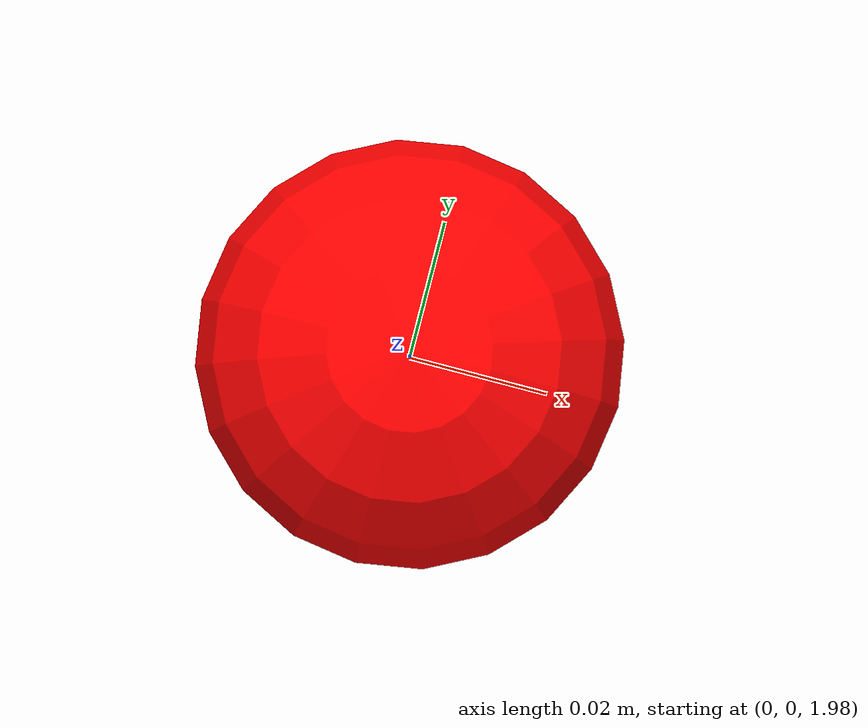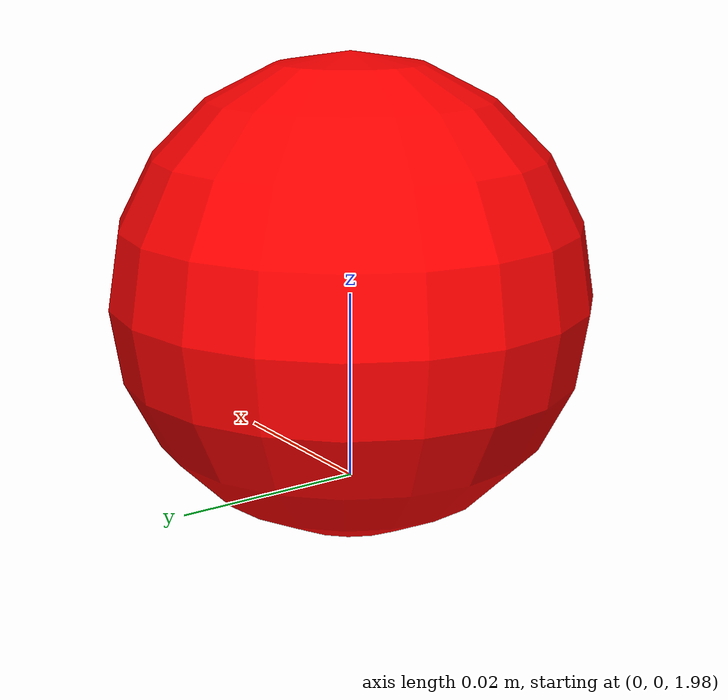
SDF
<?xml version="1.0" ?>
<sdf version="1.8">
  <world name="isaactabletop_sphere50_no_collision_no_gravity">

    <physics name="1ms" type="ignored">
      <max_step_size>0.001</max_step_size>
      <real_time_factor>1.0</real_time_factor>
      <real_time_update_rate>1000</real_time_update_rate>
    </physics>

    <gravity>0.0 0.0 0.0</gravity>

    <plugin
      filename="ignition-gazebo-physics-system"
      name="ignition::gazebo::systems::Physics">
    </plugin>

    <plugin
      filename="ignition-gazebo-user-commands-system"
      name="ignition::gazebo::systems::UserCommands">
    </plugin>

    <plugin
      filename="ignition-gazebo-scene-broadcaster-system"
      name="ignition::gazebo::systems::SceneBroadcaster">
    </plugin>

    <!-- A global light source -->
    <light type="directional" name="sun">
      <cast_shadows>true</cast_shadows>
      <pose>0 0 10 0 0 0</pose>
      <diffuse>0.8 0.8 0.8 1</diffuse>
      <specular>0.2 0.2 0.2 1</specular>
      <attenuation>
        <range>1000</range>
        <constant>0.9</constant>
        <linear>0.01</linear>
        <quadratic>0.001</quadratic>
      </attenuation>
      <direction>-0.5 0.1 -0.9</direction>
    </light>

    <!-- A ground plane -->
    <model name="ground_plane">
      <static>true</static>
      <link name="link">
        <collision name="collision">
          <geometry>
            <plane>
              <normal>0 0 1</normal>
              <size>100 100</size>
            </plane>
          </geometry>
        </collision>
        <visual name="visual">
          <geometry>
            <plane>
              <normal>0 0 1</normal>
              <size>100 100</size>
            </plane>
          </geometry>
          <material>
            <ambient>0.2 0.8 0.2 1</ambient>
            <diffuse>0.2 0.8 0.2 1</diffuse>
            <specular>0.1 0.1 0.1 1</specular>
          </material>
        </visual>
      </link>
    </model>

    <include>
      <uri>model://sphere50_no_collision</uri>
      <pose>0 0.0 2.0 0 0 0</pose>
    </include>

    <include>
      <uri>model://tabletop</uri>
      <pose>-0.05 0.2 0.05 0 0 0</pose>
    </include>

  </world>
</sdf>

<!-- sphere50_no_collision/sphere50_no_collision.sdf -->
<sdf version="1.8">
  <model name="sphere50_no_collision">
    <static>true</static>
    <link name="link">
      <pose>0 0 0.0 0 0 0</pose>
      <inertial>
        <mass>1.0</mass>
        <inertia>
          <ixx>0.27</ixx>
          <ixy>0</ixy>
          <ixz>0</ixz>
          <iyy>0.27</iyy>
          <iyz>0</iyz>
          <izz>0.27</izz>
        </inertia>
      </inertial>
      <enable_wind>false</enable_wind>

      <visual name="visual">
        <geometry>
          <sphere>
            <radius>0.025</radius>
          </sphere>
        </geometry>
        <material>
          <ambient>1 0 0 1</ambient>
          <diffuse>1 0 0 1</diffuse>
          <specular>0.1 0.1 0.1 1</specular>
        </material>
      </visual>

    </link>
  </model>
</sdf>

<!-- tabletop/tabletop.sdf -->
<sdf version="1.8">
  <model name="tabletop">
    <link name="link">
      <pose>0 0 0.0 0 0 0</pose>
      <inertial>
        <mass>1.0</mass>
        <inertia>
          <ixx>0.27</ixx>
          <ixy>0</ixy>
          <ixz>0</ixz>
          <iyy>0.27</iyy>
          <iyz>0</iyz>
          <izz>0.27</izz>
        </inertia>
      </inertial>
      <enable_wind>false</enable_wind>

      <collision name="collision">
        <geometry>
          <box>
            <size>1.0 1.0 0.1</size>
          </box>
        </geometry>
        <surface>
          <contact>
            <collide_without_contact>true</collide_without_contact>
          </contact>
          <friction>
            <ode>
              <mu>0.6</mu>
              <mu2>0.6</mu2>
            </ode>
          </friction>
        </surface>
      </collision>

      <visual name="visual">
        <geometry>
          <box>
            <size>1.0 1.0 0.1</size>
          </box>
        </geometry>
        <material>
          <ambient>1 1 1 1</ambient>
          <diffuse>1 1 1 1</diffuse>
          <specular>0.1 0.1 0.1 1</specular>
        </material>
      </visual>

    </link>
  </model>
</sdf>
